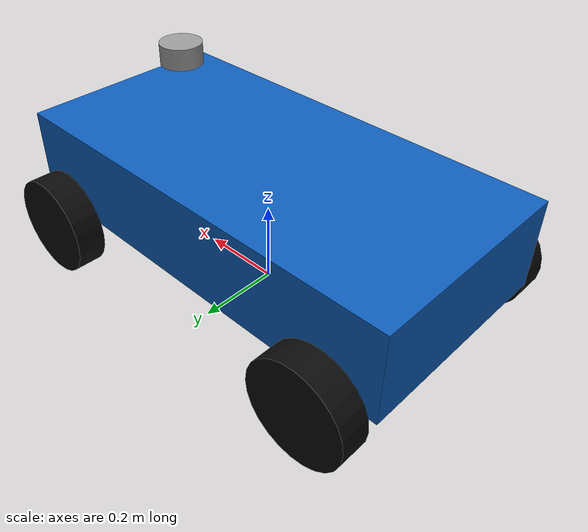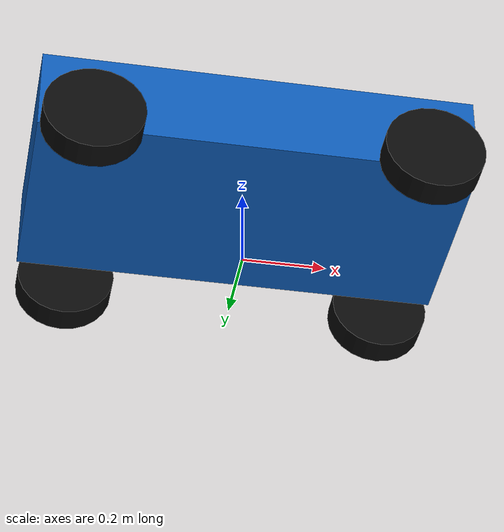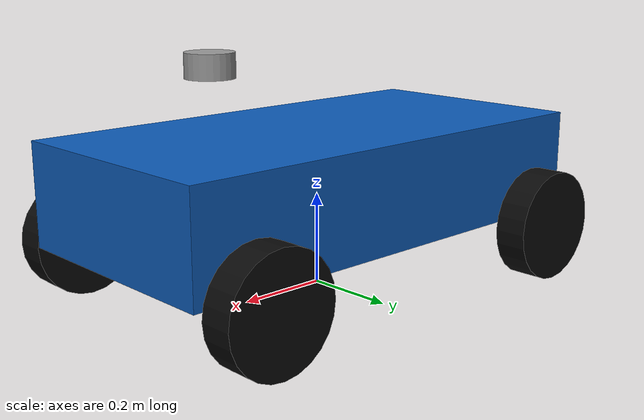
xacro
<?xml version="1.0"?>
<robot name="course_ackermann" xmlns:xacro="http://www.ros.org/wiki/xacro">

  <!-- Шасси -->
  <xacro:property name="wheelbase" value="0.8"/>        <!-- база: передняя ось − задняя, м -->
  <xacro:property name="track" value="0.62"/>           <!-- колея: левое колесо − правое, м -->
  <xacro:property name="wheel_radius" value="0.12"/>
  <xacro:property name="wheel_width" value="0.07"/>
  <xacro:property name="wheel_mass" value="0.8"/>
  <xacro:property name="knuckle_mass" value="0.2"/>
  <xacro:property name="steering_limit" value="0.55"/>  <!-- рад -->

  <!-- Корпус -->
  <xacro:property name="body_length" value="1.05"/>
  <xacro:property name="body_width" value="0.52"/>
  <xacro:property name="body_height" value="0.22"/>
  <xacro:property name="body_z" value="0.12"/>          <!-- центр корпуса над base_link -->
  <xacro:property name="body_mass" value="12.0"/>

  <!-- Сенсоры: в SDF камера, лидар и IMU закреплены в одной точке относительно base_link -->
  <xacro:property name="sensor_x" value="0.28"/>
  <xacro:property name="sensor_y" value="0.0"/>
  <xacro:property name="sensor_z" value="0.38"/>
  <xacro:property name="sensor_mass" value="0.0333"/>
  <!-- Корпуса сенсоров (только для показа, столкновений и инерции) -->
  <xacro:property name="camera_x" value="0.03"/>
  <xacro:property name="camera_y" value="0.09"/>
  <xacro:property name="camera_z" value="0.03"/>
  <xacro:property name="lidar_radius" value="0.05"/>
  <xacro:property name="lidar_length" value="0.05"/>
  <xacro:property name="imu_x" value="0.02"/>
  <xacro:property name="imu_y" value="0.02"/>
  <xacro:property name="imu_z" value="0.01"/>

  <!-- Тензоры инерции однородных тел: заведомо физически допустимы -->
  <xacro:macro name="box_inertial" params="mass x y z *origin">
    <inertial>
      <xacro:insert_block name="origin"/>
      <mass value="${mass}"/>
      <inertia ixx="${mass * (y * y + z * z) / 12}" ixy="0" ixz="0"
               iyy="${mass * (x * x + z * z) / 12}" iyz="0"
               izz="${mass * (x * x + y * y) / 12}"/>
    </inertial>
  </xacro:macro>

  <!-- Ось цилиндра — z его собственной системы; origin поворачивает её куда нужно -->
  <xacro:macro name="cylinder_inertial" params="mass radius length *origin">
    <inertial>
      <xacro:insert_block name="origin"/>
      <mass value="${mass}"/>
      <inertia ixx="${mass * (3 * radius * radius + length * length) / 12}" ixy="0" ixz="0"
               iyy="${mass * (3 * radius * radius + length * length) / 12}" iyz="0"
               izz="${mass * radius * radius / 2}"/>
    </inertial>
  </xacro:macro>

  <material name="body_blue"><color rgba="0.05 0.36 0.72 1"/></material>
  <material name="tire_black"><color rgba="0.04 0.04 0.04 1"/></material>
  <material name="sensor_grey"><color rgba="0.6 0.6 0.6 1"/></material>

  <!-- REP-105: base_footprint — проекция base_link на землю. Корень без инерции:
       KDL в robot_state_publisher не поддерживает инерцию у корневого звена. -->
  <link name="base_footprint"/>
  <joint name="base_footprint_to_base" type="fixed">
    <parent link="base_footprint"/>
    <child link="base_link"/>
    <origin xyz="0 0 ${wheel_radius}"/>
  </joint>

  <link name="base_link">
    <visual>
      <origin xyz="0 0 ${body_z}"/>
      <geometry><box size="${body_length} ${body_width} ${body_height}"/></geometry>
      <material name="body_blue"/>
    </visual>
    <collision>
      <origin xyz="0 0 ${body_z}"/>
      <geometry><box size="${body_length} ${body_width} ${body_height}"/></geometry>
    </collision>
    <xacro:box_inertial mass="${body_mass}" x="${body_length}" y="${body_width}" z="${body_height}">
      <origin xyz="0 0 ${body_z}"/>
    </xacro:box_inertial>
  </link>

  <!-- Колесо: ось вращения — y звена, цилиндр повёрнут на 90° вокруг x -->
  <xacro:macro name="wheel" params="name parent x y">
    <link name="${name}_wheel">
      <visual>
        <origin rpy="${pi / 2} 0 0"/>
        <geometry><cylinder radius="${wheel_radius}" length="${wheel_width}"/></geometry>
        <material name="tire_black"/>
      </visual>
      <collision>
        <origin rpy="${pi / 2} 0 0"/>
        <geometry><cylinder radius="${wheel_radius}" length="${wheel_width}"/></geometry>
      </collision>
      <xacro:cylinder_inertial mass="${wheel_mass}" radius="${wheel_radius}" length="${wheel_width}">
        <origin rpy="${pi / 2} 0 0"/>
      </xacro:cylinder_inertial>
    </link>
    <joint name="${name}_wheel_joint" type="continuous">
      <parent link="${parent}"/>
      <child link="${name}_wheel"/>
      <origin xyz="${x} ${y} 0"/>
      <axis xyz="0 1 0"/>
    </joint>
  </xacro:macro>

  <!-- Поворотный кулак переднего колеса: рулевое сочленение вокруг z -->
  <xacro:macro name="steered_wheel" params="name x y">
    <link name="${name}_knuckle">
      <inertial>
        <mass value="${knuckle_mass}"/>
        <inertia ixx="0.001" ixy="0" ixz="0" iyy="0.001" iyz="0" izz="0.001"/>
      </inertial>
    </link>
    <joint name="${name}_steering_joint" type="revolute">
      <parent link="base_link"/>
      <child link="${name}_knuckle"/>
      <origin xyz="${x} ${y} 0"/>
      <axis xyz="0 0 1"/>
      <limit lower="${-steering_limit}" upper="${steering_limit}" effort="25" velocity="2.0"/>
    </joint>
    <xacro:wheel name="${name}" parent="${name}_knuckle" x="0" y="0"/>
  </xacro:macro>

  <xacro:steered_wheel name="front_left" x="${wheelbase / 2}" y="${track / 2}"/>
  <xacro:steered_wheel name="front_right" x="${wheelbase / 2}" y="${-track / 2}"/>
  <xacro:wheel name="rear_left" parent="base_link" x="${-wheelbase / 2}" y="${track / 2}"/>
  <xacro:wheel name="rear_right" parent="base_link" x="${-wheelbase / 2}" y="${-track / 2}"/>

  <!-- Сенсор: звено с отдельной геометрией отображения и столкновений, фиксированно на корпусе -->
  <xacro:macro name="sensor" params="name joint parent:=base_link *geometry *inertial">
    <link name="${name}">
      <visual>
        <xacro:insert_block name="geometry"/>
        <material name="sensor_grey"/>
      </visual>
      <collision>
        <xacro:insert_block name="geometry"/>
      </collision>
      <xacro:insert_block name="inertial"/>
    </link>
    <joint name="${joint}" type="fixed">
      <parent link="${parent}"/>
      <child link="${name}"/>
      <origin xyz="${sensor_x} ${sensor_y} ${sensor_z}" rpy="0 0 0"/>
    </joint>
  </xacro:macro>

  <xacro:sensor name="camera_link" joint="base_to_camera">
    <geometry><box size="${camera_x} ${camera_y} ${camera_z}"/></geometry>
    <xacro:box_inertial mass="${sensor_mass}" x="${camera_x}" y="${camera_y}" z="${camera_z}">
      <origin xyz="0 0 0"/>
    </xacro:box_inertial>
  </xacro:sensor>
  <xacro:sensor name="lidar_link" joint="base_to_lidar">
    <geometry><cylinder radius="${lidar_radius}" length="${lidar_length}"/></geometry>
    <xacro:cylinder_inertial mass="${sensor_mass}" radius="${lidar_radius}" length="${lidar_length}">
      <origin xyz="0 0 0"/>
    </xacro:cylinder_inertial>
  </xacro:sensor>
  <xacro:sensor name="imu_link" joint="base_to_imu">
    <geometry><box size="${imu_x} ${imu_y} ${imu_z}"/></geometry>
    <xacro:box_inertial mass="${sensor_mass}" x="${imu_x}" y="${imu_y}" z="${imu_z}">
      <origin xyz="0 0 0"/>
    </xacro:box_inertial>
  </xacro:sensor>

  <!-- Оптическая система камеры (REP-103): z вперёд, x вправо, y вниз -->
  <link name="camera_link_optical"/>
  <joint name="camera_to_optical" type="fixed">
    <parent link="camera_link"/>
    <child link="camera_link_optical"/>
    <origin xyz="0 0 0" rpy="${-pi / 2} 0 ${-pi / 2}"/>
  </joint>

</robot>
